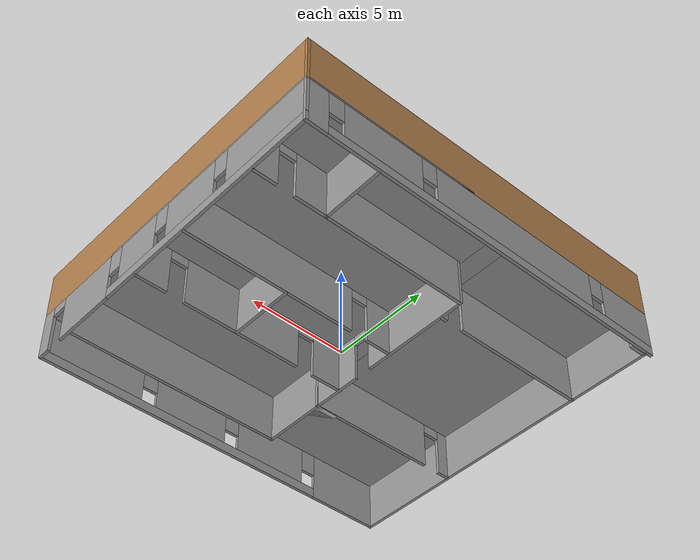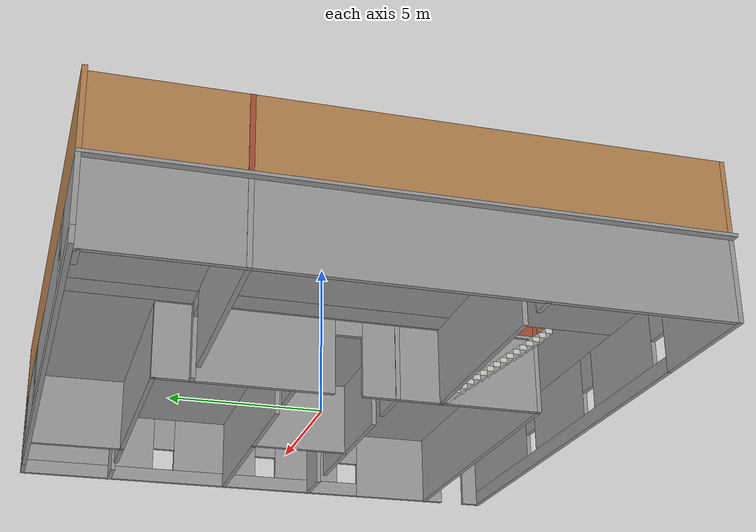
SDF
<?xml version='1.0'?>
<sdf version='1.7'>
  <model name='Robot_house'>
    <pose>-0.318995 -0.086869 0 0 -0 0</pose>
    <link name='Door_7'>
      <collision name='Door_7_Collision'>
        <geometry>
          <box>
            <size>0.9 0.17 2</size>
          </box>
        </geometry>
        <pose>0 0 1 0 -0 0</pose>
      </collision>
      <visual name='Door_7_Visual'>
        <pose>0 0 1 0 -0 0</pose>
        <geometry>
          <box>
            <size>0.9 0.17 2</size>
          </box>
        </geometry>
        <material>
          <script>
            <uri>file://media/materials/scripts/gazebo.material</uri>
            <name>Gazebo/Grey</name>
          </script>
        </material>
      </visual>
      <pose>-9.38068 8.88648 0 0 -0 0</pose>
    </link>
    <link name='Floor_0'>
      <pose>-5e-06 -0.000131 2.5 0 -0 0</pose>
      <visual name='Floor_0_Visual_0'>
        <pose>-6.33098 0 0.05 0 -0 0</pose>
        <geometry>
          <box>
            <size>7.58805 18.25 0.1</size>
          </box>
        </geometry>
        <material>
          <script>
            <uri>file://media/materials/scripts/gazebo.material</uri>
            <name>Gazebo/Grey</name>
          </script>
          <ambient>1 1 1 1</ambient>
        </material>
        <meta>
          <layer>1</layer>
        </meta>
      </visual>
      <collision name='Floor_0_Collision_0'>
        <geometry>
          <box>
            <size>7.58805 18.25 0.1</size>
          </box>
        </geometry>
        <pose>-6.33098 0 0.05 0 -0 0</pose>
      </collision>
      <visual name='Floor_0_Visual_1'>
        <pose>3.79402 -8.0081 0.05 0 -0 0</pose>
        <geometry>
          <box>
            <size>12.662 2.23379 0.1</size>
          </box>
        </geometry>
        <material>
          <script>
            <uri>file://media/materials/scripts/gazebo.material</uri>
            <name>Gazebo/Grey</name>
          </script>
          <ambient>1 1 1 1</ambient>
        </material>
        <meta>
          <layer>1</layer>
        </meta>
      </visual>
      <collision name='Floor_0_Collision_1'>
        <geometry>
          <box>
            <size>12.662 2.23379 0.1</size>
          </box>
        </geometry>
        <pose>3.79402 -8.0081 0.05 0 -0 0</pose>
      </collision>
      <visual name='Floor_0_Visual_2'>
        <pose>4.29402 1.1169 0.05 0 -0 0</pose>
        <geometry>
          <box>
            <size>11.662 16.0162 0.1</size>
          </box>
        </geometry>
        <material>
          <script>
            <uri>file://media/materials/scripts/gazebo.material</uri>
            <name>Gazebo/Grey</name>
          </script>
          <ambient>1 1 1 1</ambient>
        </material>
        <meta>
          <layer>1</layer>
        </meta>
      </visual>
      <collision name='Floor_0_Collision_2'>
        <geometry>
          <box>
            <size>11.662 16.0162 0.1</size>
          </box>
        </geometry>
        <pose>4.29402 1.1169 0.05 0 -0 0</pose>
      </collision>
      <visual name='Floor_0_Visual_3'>
        <pose>-2.03695 2.8669 0.05 0 -0 0</pose>
        <geometry>
          <box>
            <size>1 12.5162 0.1</size>
          </box>
        </geometry>
        <material>
          <script>
            <uri>file://media/materials/scripts/gazebo.material</uri>
            <name>Gazebo/Grey</name>
          </script>
          <ambient>1 1 1 1</ambient>
        </material>
        <meta>
          <layer>1</layer>
        </meta>
      </visual>
      <collision name='Floor_0_Collision_3'>
        <geometry>
          <box>
            <size>1 12.5162 0.1</size>
          </box>
        </geometry>
        <pose>-2.03695 2.8669 0.05 0 -0 0</pose>
      </collision>
    </link>
    <link name='Stairs_0'>
      <visual name='Stairs_0_Visual_0'>
        <pose>-2.03696 -3.508 0.083333 0 -0 0</pose>
        <geometry>
          <box>
            <size>1 0.233333 0.166667</size>
          </box>
        </geometry>
        <material>
          <script>
            <uri>file://media/materials/scripts/gazebo.material</uri>
            <name>Gazebo/CeilingTiled</name>
          </script>
          <ambient>1 1 1 1</ambient>
        </material>
        <meta>
          <layer>0</layer>
        </meta>
      </visual>
      <collision name='Stairs_0_Collision_0'>
        <geometry>
          <box>
            <size>1 0.233333 0.166667</size>
          </box>
        </geometry>
        <pose>-2.03696 -3.508 0.083333 0 -0 0</pose>
      </collision>
      <visual name='Stairs_0_Visual_1'>
        <pose>-2.03696 -3.74134 0.25 0 -0 0</pose>
        <geometry>
          <box>
            <size>1 0.233333 0.166667</size>
          </box>
        </geometry>
        <material>
          <script>
            <uri>file://media/materials/scripts/gazebo.material</uri>
            <name>Gazebo/CeilingTiled</name>
          </script>
          <ambient>1 1 1 1</ambient>
        </material>
        <meta>
          <layer>0</layer>
        </meta>
      </visual>
      <collision name='Stairs_0_Collision_1'>
        <geometry>
          <box>
            <size>1 0.233333 0.166667</size>
          </box>
        </geometry>
        <pose>-2.03696 -3.74134 0.25 0 -0 0</pose>
      </collision>
      <visual name='Stairs_0_Visual_2'>
        <pose>-2.03696 -3.97467 0.416667 0 -0 0</pose>
        <geometry>
          <box>
            <size>1 0.233333 0.166667</size>
          </box>
        </geometry>
        <material>
          <script>
            <uri>file://media/materials/scripts/gazebo.material</uri>
            <name>Gazebo/CeilingTiled</name>
          </script>
          <ambient>1 1 1 1</ambient>
        </material>
        <meta>
          <layer>0</layer>
        </meta>
      </visual>
      <collision name='Stairs_0_Collision_2'>
        <geometry>
          <box>
            <size>1 0.233333 0.166667</size>
          </box>
        </geometry>
        <pose>-2.03696 -3.97467 0.416667 0 -0 0</pose>
      </collision>
      <visual name='Stairs_0_Visual_3'>
        <pose>-2.03696 -4.208 0.583333 0 -0 0</pose>
        <geometry>
          <box>
            <size>1 0.233333 0.166667</size>
          </box>
        </geometry>
        <material>
          <script>
            <uri>file://media/materials/scripts/gazebo.material</uri>
            <name>Gazebo/CeilingTiled</name>
          </script>
          <ambient>1 1 1 1</ambient>
        </material>
        <meta>
          <layer>0</layer>
        </meta>
      </visual>
      <collision name='Stairs_0_Collision_3'>
        <geometry>
          <box>
            <size>1 0.233333 0.166667</size>
          </box>
        </geometry>
        <pose>-2.03696 -4.208 0.583333 0 -0 0</pose>
      </collision>
      <visual name='Stairs_0_Visual_4'>
        <pose>-2.03696 -4.44134 0.75 0 -0 0</pose>
        <geometry>
          <box>
            <size>1 0.233333 0.166667</size>
          </box>
        </geometry>
        <material>
          <script>
            <uri>file://media/materials/scripts/gazebo.material</uri>
            <name>Gazebo/CeilingTiled</name>
          </script>
          <ambient>1 1 1 1</ambient>
        </material>
        <meta>
          <layer>0</layer>
        </meta>
      </visual>
      <collision name='Stairs_0_Collision_4'>
        <geometry>
          <box>
            <size>1 0.233333 0.166667</size>
          </box>
        </geometry>
        <pose>-2.03696 -4.44134 0.75 0 -0 0</pose>
      </collision>
      <visual name='Stairs_0_Visual_5'>
        <pose>-2.03696 -4.67467 0.916667 0 -0 0</pose>
        <geometry>
          <box>
            <size>1 0.233333 0.166667</size>
          </box>
        </geometry>
        <material>
          <script>
            <uri>file://media/materials/scripts/gazebo.material</uri>
            <name>Gazebo/CeilingTiled</name>
          </script>
          <ambient>1 1 1 1</ambient>
        </material>
        <meta>
          <layer>0</layer>
        </meta>
      </visual>
      <collision name='Stairs_0_Collision_5'>
        <geometry>
          <box>
            <size>1 0.233333 0.166667</size>
          </box>
        </geometry>
        <pose>-2.03696 -4.67467 0.916667 0 -0 0</pose>
      </collision>
      <visual name='Stairs_0_Visual_6'>
        <pose>-2.03696 -4.908 1.08333 0 -0 0</pose>
        <geometry>
          <box>
            <size>1 0.233333 0.166667</size>
          </box>
        </geometry>
        <material>
          <script>
            <uri>file://media/materials/scripts/gazebo.material</uri>
            <name>Gazebo/CeilingTiled</name>
          </script>
          <ambient>1 1 1 1</ambient>
        </material>
        <meta>
          <layer>0</layer>
        </meta>
      </visual>
      <collision name='Stairs_0_Collision_6'>
        <geometry>
          <box>
            <size>1 0.233333 0.166667</size>
          </box>
        </geometry>
        <pose>-2.03696 -4.908 1.08333 0 -0 0</pose>
      </collision>
      <visual name='Stairs_0_Visual_7'>
        <pose>-2.03696 -5.14134 1.25 0 -0 0</pose>
        <geometry>
          <box>
            <size>1 0.233333 0.166667</size>
          </box>
        </geometry>
        <material>
          <script>
            <uri>file://media/materials/scripts/gazebo.material</uri>
            <name>Gazebo/CeilingTiled</name>
          </script>
          <ambient>1 1 1 1</ambient>
        </material>
        <meta>
          <layer>0</layer>
        </meta>
      </visual>
      <collision name='Stairs_0_Collision_7'>
        <geometry>
          <box>
            <size>1 0.233333 0.166667</size>
          </box>
        </geometry>
        <pose>-2.03696 -5.14134 1.25 0 -0 0</pose>
      </collision>
      <visual name='Stairs_0_Visual_8'>
        <pose>-2.03696 -5.37467 1.41667 0 -0 0</pose>
        <geometry>
          <box>
            <size>1 0.233333 0.166667</size>
          </box>
        </geometry>
        <material>
          <script>
            <uri>file://media/materials/scripts/gazebo.material</uri>
            <name>Gazebo/CeilingTiled</name>
          </script>
          <ambient>1 1 1 1</ambient>
        </material>
        <meta>
          <layer>0</layer>
        </meta>
      </visual>
      <collision name='Stairs_0_Collision_8'>
        <geometry>
          <box>
            <size>1 0.233333 0.166667</size>
          </box>
        </geometry>
        <pose>-2.03696 -5.37467 1.41667 0 -0 0</pose>
      </collision>
      <visual name='Stairs_0_Visual_9'>
        <pose>-2.03696 -5.608 1.58333 0 -0 0</pose>
        <geometry>
          <box>
            <size>1 0.233333 0.166667</size>
          </box>
        </geometry>
        <material>
          <script>
            <uri>file://media/materials/scripts/gazebo.material</uri>
            <name>Gazebo/CeilingTiled</name>
          </script>
          <ambient>1 1 1 1</ambient>
        </material>
        <meta>
          <layer>0</layer>
        </meta>
      </visual>
      <collision name='Stairs_0_Collision_9'>
        <geometry>
          <box>
            <size>1 0.233333 0.166667</size>
          </box>
        </geometry>
        <pose>-2.03696 -5.608 1.58333 0 -0 0</pose>
      </collision>
      <visual name='Stairs_0_Visual_10'>
        <pose>-2.03696 -5.84134 1.75 0 -0 0</pose>
        <geometry>
          <box>
            <size>1 0.233333 0.166667</size>
          </box>
        </geometry>
        <material>
          <script>
            <uri>file://media/materials/scripts/gazebo.material</uri>
            <name>Gazebo/CeilingTiled</name>
          </script>
          <ambient>1 1 1 1</ambient>
        </material>
        <meta>
          <layer>0</layer>
        </meta>
      </visual>
      <collision name='Stairs_0_Collision_10'>
        <geometry>
          <box>
            <size>1 0.233333 0.166667</size>
          </box>
        </geometry>
        <pose>-2.03696 -5.84134 1.75 0 -0 0</pose>
      </collision>
      <visual name='Stairs_0_Visual_11'>
        <pose>-2.03696 -6.07467 1.91667 0 -0 0</pose>
        <geometry>
          <box>
            <size>1 0.233333 0.166667</size>
          </box>
        </geometry>
        <material>
          <script>
            <uri>file://media/materials/scripts/gazebo.material</uri>
            <name>Gazebo/CeilingTiled</name>
          </script>
          <ambient>1 1 1 1</ambient>
        </material>
        <meta>
          <layer>0</layer>
        </meta>
      </visual>
      <collision name='Stairs_0_Collision_11'>
        <geometry>
          <box>
            <size>1 0.233333 0.166667</size>
          </box>
        </geometry>
        <pose>-2.03696 -6.07467 1.91667 0 -0 0</pose>
      </collision>
      <visual name='Stairs_0_Visual_12'>
        <pose>-2.03696 -6.308 2.08333 0 -0 0</pose>
        <geometry>
          <box>
            <size>1 0.233333 0.166667</size>
          </box>
        </geometry>
        <material>
          <script>
            <uri>file://media/materials/scripts/gazebo.material</uri>
            <name>Gazebo/CeilingTiled</name>
          </script>
          <ambient>1 1 1 1</ambient>
        </material>
        <meta>
          <layer>0</layer>
        </meta>
      </visual>
      <collision name='Stairs_0_Collision_12'>
        <geometry>
          <box>
            <size>1 0.233333 0.166667</size>
          </box>
        </geometry>
        <pose>-2.03696 -6.308 2.08333 0 -0 0</pose>
      </collision>
      <visual name='Stairs_0_Visual_13'>
        <pose>-2.03696 -6.54134 2.25 0 -0 0</pose>
        <geometry>
          <box>
            <size>1 0.233333 0.166667</size>
          </box>
        </geometry>
        <material>
          <script>
            <uri>file://media/materials/scripts/gazebo.material</uri>
            <name>Gazebo/CeilingTiled</name>
          </script>
          <ambient>1 1 1 1</ambient>
        </material>
        <meta>
          <layer>0</layer>
        </meta>
      </visual>
      <collision name='Stairs_0_Collision_13'>
        <geometry>
          <box>
            <size>1 0.233333 0.166667</size>
          </box>
        </geometry>
        <pose>-2.03696 -6.54134 2.25 0 -0 0</pose>
      </collision>
      <visual name='Stairs_0_Visual_14'>
        <pose>-2.03696 -6.77467 2.41667 0 -0 0</pose>
        <geometry>
          <box>
            <size>1 0.233333 0.166667</size>
          </box>
        </geometry>
        <material>
          <script>
            <uri>file://media/materials/scripts/gazebo.material</uri>
            <name>Gazebo/CeilingTiled</name>
          </script>
          <ambient>1 1 1 1</ambient>
        </material>
        <meta>
          <layer>0</layer>
        </meta>
      </visual>
      <collision name='Stairs_0_Collision_14'>
        <geometry>
          <box>
            <size>1 0.233333 0.166667</size>
          </box>
        </geometry>
        <pose>-2.03696 -6.77467 2.41667 0 -0 0</pose>
      </collision>
    </link>
    <link name='Wall_26'>
      <pose>0.125005 -9.04987 0 0 -0 0</pose>
      <visual name='Wall_26_Visual_0'>
        <pose>-8.00034 0 1.25 0 -0 0</pose>
        <geometry>
          <box>
            <size>3.99931 0.15 2.5</size>
          </box>
        </geometry>
        <material>
          <script>
            <uri>file://media/materials/scripts/gazebo.material</uri>
            <name>Gazebo/Grey</name>
          </script>
          <ambient>1 1 1 1</ambient>
        </material>
        <meta>
          <layer>0</layer>
        </meta>
      </visual>
      <collision name='Wall_26_Collision_0'>
        <geometry>
          <box>
            <size>3.99931 0.15 2.5</size>
          </box>
        </geometry>
        <pose>-8.00034 0 1.25 0 -0 0</pose>
      </collision>
      <visual name='Wall_26_Visual_1'>
        <pose>1.99966 0 0.25 0 -0 0</pose>
        <geometry>
          <box>
            <size>16.0007 0.15 0.5</size>
          </box>
        </geometry>
        <material>
          <script>
            <uri>file://media/materials/scripts/gazebo.material</uri>
            <name>Gazebo/Grey</name>
          </script>
          <ambient>1 1 1 1</ambient>
        </material>
        <meta>
          <layer>0</layer>
        </meta>
      </visual>
      <collision name='Wall_26_Collision_1'>
        <geometry>
          <box>
            <size>16.0007 0.15 0.5</size>
          </box>
        </geometry>
        <pose>1.99966 0 0.25 0 -0 0</pose>
      </collision>
      <visual name='Wall_26_Visual_2'>
        <pose>-3.16463 0 1.5 0 -0 0</pose>
        <geometry>
          <box>
            <size>4.07211 0.15 2</size>
          </box>
        </geometry>
        <material>
          <script>
            <uri>file://media/materials/scripts/gazebo.material</uri>
            <name>Gazebo/Grey</name>
          </script>
          <ambient>1 1 1 1</ambient>
        </material>
        <meta>
          <layer>0</layer>
        </meta>
      </visual>
      <collision name='Wall_26_Collision_2'>
        <geometry>
          <box>
            <size>4.07211 0.15 2</size>
          </box>
        </geometry>
        <pose>-3.16463 0 1.5 0 -0 0</pose>
      </collision>
      <visual name='Wall_26_Visual_3'>
        <pose>1.70579 0 1.5 0 -0 0</pose>
        <geometry>
          <box>
            <size>4.06873 0.15 2</size>
          </box>
        </geometry>
        <material>
          <script>
            <uri>file://media/materials/scripts/gazebo.material</uri>
            <name>Gazebo/Grey</name>
          </script>
          <ambient>1 1 1 1</ambient>
        </material>
        <meta>
          <layer>0</layer>
        </meta>
      </visual>
      <collision name='Wall_26_Collision_3'>
        <geometry>
          <box>
            <size>4.06873 0.15 2</size>
          </box>
        </geometry>
        <pose>1.70579 0 1.5 0 -0 0</pose>
      </collision>
      <visual name='Wall_26_Visual_4'>
        <pose>7.27008 0 1.5 0 -0 0</pose>
        <geometry>
          <box>
            <size>5.45985 0.15 2</size>
          </box>
        </geometry>
        <material>
          <script>
            <uri>file://media/materials/scripts/gazebo.material</uri>
            <name>Gazebo/Grey</name>
          </script>
          <ambient>1 1 1 1</ambient>
        </material>
        <meta>
          <layer>0</layer>
        </meta>
      </visual>
      <collision name='Wall_26_Collision_4'>
        <geometry>
          <box>
            <size>5.45985 0.15 2</size>
          </box>
        </geometry>
        <pose>7.27008 0 1.5 0 -0 0</pose>
      </collision>
      <visual name='Wall_26_Visual_5'>
        <pose>-5.60069 0 1.9 0 -0 0</pose>
        <geometry>
          <box>
            <size>0.8 0.15 1.2</size>
          </box>
        </geometry>
        <material>
          <script>
            <uri>file://media/materials/scripts/gazebo.material</uri>
            <name>Gazebo/Grey</name>
          </script>
          <ambient>1 1 1 1</ambient>
        </material>
        <meta>
          <layer>0</layer>
        </meta>
      </visual>
      <collision name='Wall_26_Collision_5'>
        <geometry>
          <box>
            <size>0.8 0.15 1.2</size>
          </box>
        </geometry>
        <pose>-5.60069 0 1.9 0 -0 0</pose>
      </collision>
      <visual name='Wall_26_Visual_6'>
        <pose>-0.728575 0 1.9 0 -0 0</pose>
        <geometry>
          <box>
            <size>0.8 0.15 1.2</size>
          </box>
        </geometry>
        <material>
          <script>
            <uri>file://media/materials/scripts/gazebo.material</uri>
            <name>Gazebo/Grey</name>
          </script>
          <ambient>1 1 1 1</ambient>
        </material>
        <meta>
          <layer>0</layer>
        </meta>
      </visual>
      <collision name='Wall_26_Collision_6'>
        <geometry>
          <box>
            <size>0.8 0.15 1.2</size>
          </box>
        </geometry>
        <pose>-0.728575 0 1.9 0 -0 0</pose>
      </collision>
      <visual name='Wall_26_Visual_7'>
        <pose>4.14015 0 1.9 0 -0 0</pose>
        <geometry>
          <box>
            <size>0.8 0.15 1.2</size>
          </box>
        </geometry>
        <material>
          <script>
            <uri>file://media/materials/scripts/gazebo.material</uri>
            <name>Gazebo/Grey</name>
          </script>
          <ambient>1 1 1 1</ambient>
        </material>
        <meta>
          <layer>0</layer>
        </meta>
      </visual>
      <collision name='Wall_26_Collision_7'>
        <geometry>
          <box>
            <size>0.8 0.15 1.2</size>
          </box>
        </geometry>
        <pose>4.14015 0 1.9 0 -0 0</pose>
      </collision>
    </link>
    <link name='Wall_27'>
      <pose>10.05 0.00013 0 0 -0 1.5708</pose>
      <visual name='Wall_27_Visual_0'>
        <pose>-8.75395 0 1.25 0 -0 0</pose>
        <geometry>
          <box>
            <size>0.742097 0.15 2.5</size>
          </box>
        </geometry>
        <material>
          <script>
            <uri>file://media/materials/scripts/gazebo.material</uri>
            <name>Gazebo/Grey</name>
          </script>
          <ambient>1 1 1 1</ambient>
        </material>
        <meta>
          <layer>0</layer>
        </meta>
      </visual>
      <collision name='Wall_27_Collision_0'>
        <geometry>
          <box>
            <size>0.742097 0.15 2.5</size>
          </box>
        </geometry>
        <pose>-8.75395 0 1.25 0 -0 0</pose>
      </collision>
      <visual name='Wall_27_Visual_1'>
        <pose>-5.70162 0 1.25 0 -0 0</pose>
        <geometry>
          <box>
            <size>3.56258 0.15 2.5</size>
          </box>
        </geometry>
        <material>
          <script>
            <uri>file://media/materials/scripts/gazebo.material</uri>
            <name>Gazebo/Grey</name>
          </script>
          <ambient>1 1 1 1</ambient>
        </material>
        <meta>
          <layer>0</layer>
        </meta>
      </visual>
      <collision name='Wall_27_Collision_1'>
        <geometry>
          <box>
            <size>3.56258 0.15 2.5</size>
          </box>
        </geometry>
        <pose>-5.70162 0 1.25 0 -0 0</pose>
      </collision>
      <visual name='Wall_27_Visual_2'>
        <pose>2.60234 0 0.25 0 -0 0</pose>
        <geometry>
          <box>
            <size>13.0453 0.15 0.5</size>
          </box>
        </geometry>
        <material>
          <script>
            <uri>file://media/materials/scripts/gazebo.material</uri>
            <name>Gazebo/Grey</name>
          </script>
          <ambient>1 1 1 1</ambient>
        </material>
        <meta>
          <layer>0</layer>
        </meta>
      </visual>
      <collision name='Wall_27_Collision_2'>
        <geometry>
          <box>
            <size>13.0453 0.15 0.5</size>
          </box>
        </geometry>
        <pose>2.60234 0 0.25 0 -0 0</pose>
      </collision>
      <visual name='Wall_27_Visual_3'>
        <pose>-1.85316 0 1.5 0 -0 0</pose>
        <geometry>
          <box>
            <size>2.53434 0.15 2</size>
          </box>
        </geometry>
        <material>
          <script>
            <uri>file://media/materials/scripts/gazebo.material</uri>
            <name>Gazebo/Grey</name>
          </script>
          <ambient>1 1 1 1</ambient>
        </material>
        <meta>
          <layer>0</layer>
        </meta>
      </visual>
      <collision name='Wall_27_Collision_3'>
        <geometry>
          <box>
            <size>2.53434 0.15 2</size>
          </box>
        </geometry>
        <pose>-1.85316 0 1.5 0 -0 0</pose>
      </collision>
      <visual name='Wall_27_Visual_4'>
        <pose>1.81767 0 1.5 0 -0 0</pose>
        <geometry>
          <box>
            <size>3.20732 0.15 2</size>
          </box>
        </geometry>
        <material>
          <script>
            <uri>file://media/materials/scripts/gazebo.material</uri>
            <name>Gazebo/Grey</name>
          </script>
          <ambient>1 1 1 1</ambient>
        </material>
        <meta>
          <layer>0</layer>
        </meta>
      </visual>
      <collision name='Wall_27_Collision_4'>
        <geometry>
          <box>
            <size>3.20732 0.15 2</size>
          </box>
        </geometry>
        <pose>1.81767 0 1.5 0 -0 0</pose>
      </collision>
      <visual name='Wall_27_Visual_5'>
        <pose>6.67316 0 1.5 0 -0 0</pose>
        <geometry>
          <box>
            <size>4.90367 0.15 2</size>
          </box>
        </geometry>
        <material>
          <script>
            <uri>file://media/materials/scripts/gazebo.material</uri>
            <name>Gazebo/Grey</name>
          </script>
          <ambient>1 1 1 1</ambient>
        </material>
        <meta>
          <layer>0</layer>
        </meta>
      </visual>
      <collision name='Wall_27_Collision_5'>
        <geometry>
          <box>
            <size>4.90367 0.15 2</size>
          </box>
        </geometry>
        <pose>6.67316 0 1.5 0 -0 0</pose>
      </collision>
      <visual name='Wall_27_Visual_6'>
        <pose>-3.52033 0 1.9 0 -0 0</pose>
        <geometry>
          <box>
            <size>0.8 0.15 1.2</size>
          </box>
        </geometry>
        <material>
          <script>
            <uri>file://media/materials/scripts/gazebo.material</uri>
            <name>Gazebo/Grey</name>
          </script>
          <ambient>1 1 1 1</ambient>
        </material>
        <meta>
          <layer>0</layer>
        </meta>
      </visual>
      <collision name='Wall_27_Collision_6'>
        <geometry>
          <box>
            <size>0.8 0.15 1.2</size>
          </box>
        </geometry>
        <pose>-3.52033 0 1.9 0 -0 0</pose>
      </collision>
      <visual name='Wall_27_Visual_7'>
        <pose>-0.185992 0 1.9 0 -0 0</pose>
        <geometry>
          <box>
            <size>0.8 0.15 1.2</size>
          </box>
        </geometry>
        <material>
          <script>
            <uri>file://media/materials/scripts/gazebo.material</uri>
            <name>Gazebo/Grey</name>
          </script>
          <ambient>1 1 1 1</ambient>
        </material>
        <meta>
          <layer>0</layer>
        </meta>
      </visual>
      <collision name='Wall_27_Collision_7'>
        <geometry>
          <box>
            <size>0.8 0.15 1.2</size>
          </box>
        </geometry>
        <pose>-0.185992 0 1.9 0 -0 0</pose>
      </collision>
      <visual name='Wall_27_Visual_8'>
        <pose>3.82133 0 1.9 0 -0 0</pose>
        <geometry>
          <box>
            <size>0.8 0.15 1.2</size>
          </box>
        </geometry>
        <material>
          <script>
            <uri>file://media/materials/scripts/gazebo.material</uri>
            <name>Gazebo/Grey</name>
          </script>
          <ambient>1 1 1 1</ambient>
        </material>
        <meta>
          <layer>0</layer>
        </meta>
      </visual>
      <collision name='Wall_27_Collision_8'>
        <geometry>
          <box>
            <size>0.8 0.15 1.2</size>
          </box>
        </geometry>
        <pose>3.82133 0 1.9 0 -0 0</pose>
      </collision>
      <visual name='Wall_27_Visual_9'>
        <pose>-7.9329 0 2.25 0 -0 0</pose>
        <geometry>
          <box>
            <size>0.9 0.15 0.5</size>
          </box>
        </geometry>
        <material>
          <script>
            <uri>file://media/materials/scripts/gazebo.material</uri>
            <name>Gazebo/Grey</name>
          </script>
          <ambient>1 1 1 1</ambient>
        </material>
        <meta>
          <layer>0</layer>
        </meta>
      </visual>
      <collision name='Wall_27_Collision_9'>
        <geometry>
          <box>
            <size>0.9 0.15 0.5</size>
          </box>
        </geometry>
        <pose>-7.9329 0 2.25 0 -0 0</pose>
      </collision>
    </link>
    <link name='Wall_28'>
      <pose>5e-06 9.05013 0 0 -0 3.14159</pose>
      <visual name='Wall_28_Visual_0'>
        <pose>-9.55122 0 1.25 0 -0 0</pose>
        <geometry>
          <box>
            <size>1.14757 0.15 2.5</size>
          </box>
        </geometry>
        <material>
          <script>
            <uri>file://media/materials/scripts/gazebo.material</uri>
            <name>Gazebo/Grey</name>
          </script>
          <ambient>1 1 1 1</ambient>
        </material>
        <meta>
          <layer>0</layer>
        </meta>
      </visual>
      <collision name='Wall_28_Collision_0'>
        <geometry>
          <box>
            <size>1.14757 0.15 2.5</size>
          </box>
        </geometry>
        <pose>-9.55122 0 1.25 0 -0 0</pose>
      </collision>
      <visual name='Wall_28_Visual_1'>
        <pose>0.573784 0 0.25 0 -0 0</pose>
        <geometry>
          <box>
            <size>19.1024 0.15 0.5</size>
          </box>
        </geometry>
        <material>
          <script>
            <uri>file://media/materials/scripts/gazebo.material</uri>
            <name>Gazebo/Grey</name>
          </script>
          <ambient>1 1 1 1</ambient>
        </material>
        <meta>
          <layer>0</layer>
        </meta>
      </visual>
      <collision name='Wall_28_Collision_1'>
        <geometry>
          <box>
            <size>19.1024 0.15 0.5</size>
          </box>
        </geometry>
        <pose>0.573784 0 0.25 0 -0 0</pose>
      </collision>
      <visual name='Wall_28_Visual_2'>
        <pose>-6.06919 0 1.5 0 -0 0</pose>
        <geometry>
          <box>
            <size>4.21649 0.15 2</size>
          </box>
        </geometry>
        <material>
          <script>
            <uri>file://media/materials/scripts/gazebo.material</uri>
            <name>Gazebo/Grey</name>
          </script>
          <ambient>1 1 1 1</ambient>
        </material>
        <meta>
          <layer>0</layer>
        </meta>
      </visual>
      <collision name='Wall_28_Collision_2'>
        <geometry>
          <box>
            <size>4.21649 0.15 2</size>
          </box>
        </geometry>
        <pose>-6.06919 0 1.5 0 -0 0</pose>
      </collision>
      <visual name='Wall_28_Visual_3'>
        <pose>1.53438 0 1.5 0 -0 0</pose>
        <geometry>
          <box>
            <size>9.39064 0.15 2</size>
          </box>
        </geometry>
        <material>
          <script>
            <uri>file://media/materials/scripts/gazebo.material</uri>
            <name>Gazebo/Grey</name>
          </script>
          <ambient>1 1 1 1</ambient>
        </material>
        <meta>
          <layer>0</layer>
        </meta>
      </visual>
      <collision name='Wall_28_Collision_3'>
        <geometry>
          <box>
            <size>9.39064 0.15 2</size>
          </box>
        </geometry>
        <pose>1.53438 0 1.5 0 -0 0</pose>
      </collision>
      <visual name='Wall_28_Visual_4'>
        <pose>8.57735 0 1.5 0 -0 0</pose>
        <geometry>
          <box>
            <size>3.0953 0.15 2</size>
          </box>
        </geometry>
        <material>
          <script>
            <uri>file://media/materials/scripts/gazebo.material</uri>
            <name>Gazebo/Grey</name>
          </script>
          <ambient>1 1 1 1</ambient>
        </material>
        <meta>
          <layer>0</layer>
        </meta>
      </visual>
      <collision name='Wall_28_Collision_4'>
        <geometry>
          <box>
            <size>3.0953 0.15 2</size>
          </box>
        </geometry>
        <pose>8.57735 0 1.5 0 -0 0</pose>
      </collision>
      <visual name='Wall_28_Visual_5'>
        <pose>-8.57743 0 1.9 0 -0 0</pose>
        <geometry>
          <box>
            <size>0.8 0.15 1.2</size>
          </box>
        </geometry>
        <material>
          <script>
            <uri>file://media/materials/scripts/gazebo.material</uri>
            <name>Gazebo/Grey</name>
          </script>
          <ambient>1 1 1 1</ambient>
        </material>
        <meta>
          <layer>0</layer>
        </meta>
      </visual>
      <collision name='Wall_28_Collision_5'>
        <geometry>
          <box>
            <size>0.8 0.15 1.2</size>
          </box>
        </geometry>
        <pose>-8.57743 0 1.9 0 -0 0</pose>
      </collision>
      <visual name='Wall_28_Visual_6'>
        <pose>-3.56094 0 1.9 0 -0 0</pose>
        <geometry>
          <box>
            <size>0.8 0.15 1.2</size>
          </box>
        </geometry>
        <material>
          <script>
            <uri>file://media/materials/scripts/gazebo.material</uri>
            <name>Gazebo/Grey</name>
          </script>
          <ambient>1 1 1 1</ambient>
        </material>
        <meta>
          <layer>0</layer>
        </meta>
      </visual>
      <collision name='Wall_28_Collision_6'>
        <geometry>
          <box>
            <size>0.8 0.15 1.2</size>
          </box>
        </geometry>
        <pose>-3.56094 0 1.9 0 -0 0</pose>
      </collision>
      <visual name='Wall_28_Visual_7'>
        <pose>6.62971 0 1.9 0 -0 0</pose>
        <geometry>
          <box>
            <size>0.8 0.15 1.2</size>
          </box>
        </geometry>
        <material>
          <script>
            <uri>file://media/materials/scripts/gazebo.material</uri>
            <name>Gazebo/Grey</name>
          </script>
          <ambient>1 1 1 1</ambient>
        </material>
        <meta>
          <layer>0</layer>
        </meta>
      </visual>
      <collision name='Wall_28_Collision_7'>
        <geometry>
          <box>
            <size>0.8 0.15 1.2</size>
          </box>
        </geometry>
        <pose>6.62971 0 1.9 0 -0 0</pose>
      </collision>
    </link>
    <link name='Wall_31'>
      <collision name='Wall_31_Collision'>
        <geometry>
          <box>
            <size>18.25 0.15 2.5</size>
          </box>
        </geometry>
        <pose>0 0 1.25 0 -0 0</pose>
      </collision>
      <visual name='Wall_31_Visual'>
        <pose>0 0 1.25 0 -0 0</pose>
        <geometry>
          <box>
            <size>18.25 0.15 2.5</size>
          </box>
        </geometry>
        <material>
          <script>
            <uri>file://media/materials/scripts/gazebo.material</uri>
            <name>Gazebo/Grey</name>
          </script>
          <ambient>1 1 1 1</ambient>
        </material>
        <meta>
          <layer>0</layer>
        </meta>
      </visual>
      <pose>-9.79999 0.00013 0 0 -0 1.5708</pose>
    </link>
    <link name='Wall_41'>
      <collision name='Wall_41_Collision'>
        <geometry>
          <box>
            <size>11.5 0.15 2.5</size>
          </box>
        </geometry>
        <pose>0 0 1.25 0 -0 0</pose>
      </collision>
      <visual name='Wall_41_Visual'>
        <pose>0 0 1.25 0 -0 0</pose>
        <geometry>
          <box>
            <size>11.5 0.15 2.5</size>
          </box>
        </geometry>
        <material>
          <script>
            <uri>file://media/materials/scripts/gazebo.material</uri>
            <name>Gazebo/Grey</name>
          </script>
          <ambient>1 1 1 1</ambient>
        </material>
        <meta>
          <layer>0</layer>
        </meta>
      </visual>
      <pose>4.30819 -6.77344 0 0 -0 3.14159</pose>
    </link>
    <link name='Wall_42'>
      <pose>-1.36681 -0.47344 0 0 -0 1.5708</pose>
      <visual name='Wall_42_Visual_0'>
        <pose>-3.34447 0 1.25 0 -0 0</pose>
        <geometry>
          <box>
            <size>6.06105 0.15 2.5</size>
          </box>
        </geometry>
        <material>
          <script>
            <uri>file://media/materials/scripts/gazebo.material</uri>
            <name>Gazebo/Grey</name>
          </script>
          <ambient>1 1 1 1</ambient>
        </material>
        <meta>
          <layer>0</layer>
        </meta>
      </visual>
      <collision name='Wall_42_Collision_0'>
        <geometry>
          <box>
            <size>6.06105 0.15 2.5</size>
          </box>
        </geometry>
        <pose>-3.34447 0 1.25 0 -0 0</pose>
      </collision>
      <visual name='Wall_42_Visual_1'>
        <pose>3.48053 0 1.25 0 -0 0</pose>
        <geometry>
          <box>
            <size>5.78895 0.15 2.5</size>
          </box>
        </geometry>
        <material>
          <script>
            <uri>file://media/materials/scripts/gazebo.material</uri>
            <name>Gazebo/Grey</name>
          </script>
          <ambient>1 1 1 1</ambient>
        </material>
        <meta>
          <layer>0</layer>
        </meta>
      </visual>
      <collision name='Wall_42_Collision_1'>
        <geometry>
          <box>
            <size>5.78895 0.15 2.5</size>
          </box>
        </geometry>
        <pose>3.48053 0 1.25 0 -0 0</pose>
      </collision>
      <visual name='Wall_42_Visual_2'>
        <pose>0.136051 0 2.25 0 -0 0</pose>
        <geometry>
          <box>
            <size>0.9 0.15 0.5</size>
          </box>
        </geometry>
        <material>
          <script>
            <uri>file://media/materials/scripts/gazebo.material</uri>
            <name>Gazebo/Grey</name>
          </script>
          <ambient>1 1 1 1</ambient>
        </material>
        <meta>
          <layer>0</layer>
        </meta>
      </visual>
      <collision name='Wall_42_Collision_2'>
        <geometry>
          <box>
            <size>0.9 0.15 0.5</size>
          </box>
        </geometry>
        <pose>0.136051 0 2.25 0 -0 0</pose>
      </collision>
    </link>
    <link name='Wall_43'>
      <collision name='Wall_43_Collision'>
        <geometry>
          <box>
            <size>7.70977 0.15 2.5</size>
          </box>
        </geometry>
        <pose>0 0 1.25 0 -0 0</pose>
      </collision>
      <visual name='Wall_43_Visual'>
        <pose>0 0 1.25 0 -0 0</pose>
        <geometry>
          <box>
            <size>7.70977 0.15 2.5</size>
          </box>
        </geometry>
        <material>
          <script>
            <uri>file://media/materials/scripts/gazebo.material</uri>
            <name>Gazebo/Grey</name>
          </script>
          <ambient>1 1 1 1</ambient>
        </material>
        <meta>
          <layer>0</layer>
        </meta>
      </visual>
      <pose>2.41308 5.82656 0 0 -0 0</pose>
    </link>
    <link name='Wall_44'>
      <collision name='Wall_44_Collision'>
        <geometry>
          <box>
            <size>3.25 0.15 2.5</size>
          </box>
        </geometry>
        <pose>0 0 1.25 0 -0 0</pose>
      </collision>
      <visual name='Wall_44_Visual'>
        <pose>0 0 1.25 0 -0 0</pose>
        <geometry>
          <box>
            <size>3.25 0.15 2.5</size>
          </box>
        </geometry>
        <material>
          <script>
            <uri>file://media/materials/scripts/gazebo.material</uri>
            <name>Gazebo/Grey</name>
          </script>
          <ambient>1 1 1 1</ambient>
        </material>
        <meta>
          <layer>0</layer>
        </meta>
      </visual>
      <pose>6.21308 7.37656 0 0 -0 1.55782</pose>
    </link>
    <link name='Wall_46'>
      <pose>-5.52243 -3.42391 0 0 -0 0</pose>
      <visual name='Wall_46_Visual_0'>
        <pose>-3.91782 0 1.25 0 -0 0</pose>
        <geometry>
          <box>
            <size>0.664359 0.15 2.5</size>
          </box>
        </geometry>
        <material>
          <script>
            <uri>file://media/materials/scripts/gazebo.material</uri>
            <name>Gazebo/Grey</name>
          </script>
          <ambient>1 1 1 1</ambient>
        </material>
        <meta>
          <layer>0</layer>
        </meta>
      </visual>
      <collision name='Wall_46_Collision_0'>
        <geometry>
          <box>
            <size>0.664359 0.15 2.5</size>
          </box>
        </geometry>
        <pose>-3.91782 0 1.25 0 -0 0</pose>
      </collision>
      <visual name='Wall_46_Visual_1'>
        <pose>0.782179 0 1.25 0 -0 0</pose>
        <geometry>
          <box>
            <size>6.93564 0.15 2.5</size>
          </box>
        </geometry>
        <material>
          <script>
            <uri>file://media/materials/scripts/gazebo.material</uri>
            <name>Gazebo/Grey</name>
          </script>
          <ambient>1 1 1 1</ambient>
        </material>
        <meta>
          <layer>0</layer>
        </meta>
      </visual>
      <collision name='Wall_46_Collision_1'>
        <geometry>
          <box>
            <size>6.93564 0.15 2.5</size>
          </box>
        </geometry>
        <pose>0.782179 0 1.25 0 -0 0</pose>
      </collision>
      <visual name='Wall_46_Visual_2'>
        <pose>-3.13564 0 2.25 0 -0 0</pose>
        <geometry>
          <box>
            <size>0.9 0.15 0.5</size>
          </box>
        </geometry>
        <material>
          <script>
            <uri>file://media/materials/scripts/gazebo.material</uri>
            <name>Gazebo/Grey</name>
          </script>
          <ambient>1 1 1 1</ambient>
        </material>
        <meta>
          <layer>0</layer>
        </meta>
      </visual>
      <collision name='Wall_46_Collision_2'>
        <geometry>
          <box>
            <size>0.9 0.15 0.5</size>
          </box>
        </geometry>
        <pose>-3.13564 0 2.25 0 -0 0</pose>
      </collision>
    </link>
    <link name='Wall_48'>
      <pose>-5.63224 4.65171 0 0 -0 3.14159</pose>
      <visual name='Wall_48_Visual_0'>
        <pose>-4.07632 0 1.25 0 -0 0</pose>
        <geometry>
          <box>
            <size>0.34735 0.15 2.5</size>
          </box>
        </geometry>
        <material>
          <script>
            <uri>file://media/materials/scripts/gazebo.material</uri>
            <name>Gazebo/Grey</name>
          </script>
          <ambient>1 1 1 1</ambient>
        </material>
        <meta>
          <layer>0</layer>
        </meta>
      </visual>
      <collision name='Wall_48_Collision_0'>
        <geometry>
          <box>
            <size>0.34735 0.15 2.5</size>
          </box>
        </geometry>
        <pose>-4.07632 0 1.25 0 -0 0</pose>
      </collision>
      <visual name='Wall_48_Visual_1'>
        <pose>0.623675 0 1.25 0 -0 0</pose>
        <geometry>
          <box>
            <size>7.25265 0.15 2.5</size>
          </box>
        </geometry>
        <material>
          <script>
            <uri>file://media/materials/scripts/gazebo.material</uri>
            <name>Gazebo/Grey</name>
          </script>
          <ambient>1 1 1 1</ambient>
        </material>
        <meta>
          <layer>0</layer>
        </meta>
      </visual>
      <collision name='Wall_48_Collision_1'>
        <geometry>
          <box>
            <size>7.25265 0.15 2.5</size>
          </box>
        </geometry>
        <pose>0.623675 0 1.25 0 -0 0</pose>
      </collision>
      <visual name='Wall_48_Visual_2'>
        <pose>-3.45265 0 2.25 0 -0 0</pose>
        <geometry>
          <box>
            <size>0.9 0.15 0.5</size>
          </box>
        </geometry>
        <material>
          <script>
            <uri>file://media/materials/scripts/gazebo.material</uri>
            <name>Gazebo/Grey</name>
          </script>
          <ambient>1 1 1 1</ambient>
        </material>
        <meta>
          <layer>0</layer>
        </meta>
      </visual>
      <collision name='Wall_48_Collision_2'>
        <geometry>
          <box>
            <size>0.9 0.15 0.5</size>
          </box>
        </geometry>
        <pose>-3.45265 0 2.25 0 -0 0</pose>
      </collision>
    </link>
    <link name='Wall_65'>
      <pose>8.11796 5.82656 0 0 -0 0</pose>
      <visual name='Wall_65_Visual_0'>
        <pose>-1.11455 0 1.25 0 -0 0</pose>
        <geometry>
          <box>
            <size>1.7709 0.15 2.5</size>
          </box>
        </geometry>
        <material>
          <script>
            <uri>file://media/materials/scripts/gazebo.material</uri>
            <name>Gazebo/Grey</name>
          </script>
          <ambient>1 1 1 1</ambient>
        </material>
        <meta>
          <layer>0</layer>
        </meta>
      </visual>
      <collision name='Wall_65_Collision_0'>
        <geometry>
          <box>
            <size>1.7709 0.15 2.5</size>
          </box>
        </geometry>
        <pose>-1.11455 0 1.25 0 -0 0</pose>
      </collision>
      <visual name='Wall_65_Visual_1'>
        <pose>1.33545 0 1.25 0 -0 0</pose>
        <geometry>
          <box>
            <size>1.3291 0.15 2.5</size>
          </box>
        </geometry>
        <material>
          <script>
            <uri>file://media/materials/scripts/gazebo.material</uri>
            <name>Gazebo/Grey</name>
          </script>
          <ambient>1 1 1 1</ambient>
        </material>
        <meta>
          <layer>0</layer>
        </meta>
      </visual>
      <collision name='Wall_65_Collision_1'>
        <geometry>
          <box>
            <size>1.3291 0.15 2.5</size>
          </box>
        </geometry>
        <pose>1.33545 0 1.25 0 -0 0</pose>
      </collision>
      <visual name='Wall_65_Visual_2'>
        <pose>0.2209 0 2.25 0 -0 0</pose>
        <geometry>
          <box>
            <size>0.9 0.15 0.5</size>
          </box>
        </geometry>
        <material>
          <script>
            <uri>file://media/materials/scripts/gazebo.material</uri>
            <name>Gazebo/Grey</name>
          </script>
          <ambient>1 1 1 1</ambient>
        </material>
        <meta>
          <layer>0</layer>
        </meta>
      </visual>
      <collision name='Wall_65_Collision_2'>
        <geometry>
          <box>
            <size>0.9 0.15 0.5</size>
          </box>
        </geometry>
        <pose>0.2209 0 2.25 0 -0 0</pose>
      </collision>
    </link>
    <link name='Wall_67'>
      <pose>4.32873 1.41586 0 0 -0 0</pose>
      <visual name='Wall_67_Visual_0'>
        <pose>-5.01912 0 1.25 0 -0 0</pose>
        <geometry>
          <box>
            <size>1.46175 0.15 2.5</size>
          </box>
        </geometry>
        <material>
          <script>
            <uri>file://media/materials/scripts/gazebo.material</uri>
            <name>Gazebo/Grey</name>
          </script>
          <ambient>1 1 1 1</ambient>
        </material>
        <meta>
          <layer>0</layer>
        </meta>
      </visual>
      <collision name='Wall_67_Collision_0'>
        <geometry>
          <box>
            <size>1.46175 0.15 2.5</size>
          </box>
        </geometry>
        <pose>-5.01912 0 1.25 0 -0 0</pose>
      </collision>
      <visual name='Wall_67_Visual_1'>
        <pose>1.18088 0 1.25 0 -0 0</pose>
        <geometry>
          <box>
            <size>9.13824 0.15 2.5</size>
          </box>
        </geometry>
        <material>
          <script>
            <uri>file://media/materials/scripts/gazebo.material</uri>
            <name>Gazebo/Grey</name>
          </script>
          <ambient>1 1 1 1</ambient>
        </material>
        <meta>
          <layer>0</layer>
        </meta>
      </visual>
      <collision name='Wall_67_Collision_1'>
        <geometry>
          <box>
            <size>9.13824 0.15 2.5</size>
          </box>
        </geometry>
        <pose>1.18088 0 1.25 0 -0 0</pose>
      </collision>
      <visual name='Wall_67_Visual_2'>
        <pose>-3.83825 0 2.25 0 -0 0</pose>
        <geometry>
          <box>
            <size>0.9 0.15 0.5</size>
          </box>
        </geometry>
        <material>
          <script>
            <uri>file://media/materials/scripts/gazebo.material</uri>
            <name>Gazebo/Grey</name>
          </script>
          <ambient>1 1 1 1</ambient>
        </material>
        <meta>
          <layer>0</layer>
        </meta>
      </visual>
      <collision name='Wall_67_Collision_2'>
        <geometry>
          <box>
            <size>0.9 0.15 0.5</size>
          </box>
        </geometry>
        <pose>-3.83825 0 2.25 0 -0 0</pose>
      </collision>
    </link>
    <link name='Wall_69'>
      <pose>4.29157 -1.9524 0 0 -0 0</pose>
      <visual name='Wall_69_Visual_0'>
        <pose>-4.87918 0 1.25 0 -0 0</pose>
        <geometry>
          <box>
            <size>1.74165 0.15 2.5</size>
          </box>
        </geometry>
        <material>
          <script>
            <uri>file://media/materials/scripts/gazebo.material</uri>
            <name>Gazebo/Grey</name>
          </script>
          <ambient>1 1 1 1</ambient>
        </material>
        <meta>
          <layer>0</layer>
        </meta>
      </visual>
      <collision name='Wall_69_Collision_0'>
        <geometry>
          <box>
            <size>1.74165 0.15 2.5</size>
          </box>
        </geometry>
        <pose>-4.87918 0 1.25 0 -0 0</pose>
      </collision>
      <visual name='Wall_69_Visual_1'>
        <pose>0.042192 0 1.25 0 -0 0</pose>
        <geometry>
          <box>
            <size>6.30109 0.15 2.5</size>
          </box>
        </geometry>
        <material>
          <script>
            <uri>file://media/materials/scripts/gazebo.material</uri>
            <name>Gazebo/Grey</name>
          </script>
          <ambient>1 1 1 1</ambient>
        </material>
        <meta>
          <layer>0</layer>
        </meta>
      </visual>
      <collision name='Wall_69_Collision_1'>
        <geometry>
          <box>
            <size>6.30109 0.15 2.5</size>
          </box>
        </geometry>
        <pose>0.042192 0 1.25 0 -0 0</pose>
      </collision>
      <visual name='Wall_69_Visual_2'>
        <pose>4.92137 0 1.25 0 -0 0</pose>
        <geometry>
          <box>
            <size>1.65726 0.15 2.5</size>
          </box>
        </geometry>
        <material>
          <script>
            <uri>file://media/materials/scripts/gazebo.material</uri>
            <name>Gazebo/Grey</name>
          </script>
          <ambient>1 1 1 1</ambient>
        </material>
        <meta>
          <layer>0</layer>
        </meta>
      </visual>
      <collision name='Wall_69_Collision_2'>
        <geometry>
          <box>
            <size>1.65726 0.15 2.5</size>
          </box>
        </geometry>
        <pose>4.92137 0 1.25 0 -0 0</pose>
      </collision>
      <visual name='Wall_69_Visual_3'>
        <pose>-3.55836 0 2.25 0 -0 0</pose>
        <geometry>
          <box>
            <size>0.9 0.15 0.5</size>
          </box>
        </geometry>
        <material>
          <script>
            <uri>file://media/materials/scripts/gazebo.material</uri>
            <name>Gazebo/Grey</name>
          </script>
          <ambient>1 1 1 1</ambient>
        </material>
        <meta>
          <layer>0</layer>
        </meta>
      </visual>
      <collision name='Wall_69_Collision_3'>
        <geometry>
          <box>
            <size>0.9 0.15 0.5</size>
          </box>
        </geometry>
        <pose>-3.55836 0 2.25 0 -0 0</pose>
      </collision>
      <visual name='Wall_69_Visual_4'>
        <pose>3.64274 0 2.25 0 -0 0</pose>
        <geometry>
          <box>
            <size>0.9 0.15 0.5</size>
          </box>
        </geometry>
        <material>
          <script>
            <uri>file://media/materials/scripts/gazebo.material</uri>
            <name>Gazebo/Grey</name>
          </script>
          <ambient>1 1 1 1</ambient>
        </material>
        <meta>
          <layer>0</layer>
        </meta>
      </visual>
      <collision name='Wall_69_Collision_4'>
        <geometry>
          <box>
            <size>0.9 0.15 0.5</size>
          </box>
        </geometry>
        <pose>3.64274 0 2.25 0 -0 0</pose>
      </collision>
    </link>
    <link name='Wall_77'>
      <collision name='Wall_77_Collision'>
        <geometry>
          <box>
            <size>3.5 0.15 2.5</size>
          </box>
        </geometry>
        <pose>0 0 1.25 0 -0 0</pose>
      </collision>
      <visual name='Wall_77_Visual'>
        <pose>0 0 1.25 0 -0 0</pose>
        <geometry>
          <box>
            <size>3.5 0.15 2.5</size>
          </box>
        </geometry>
        <material>
          <script>
            <uri>file://media/materials/scripts/gazebo.material</uri>
            <name>Gazebo/Grey</name>
          </script>
          <ambient>1 1 1 1</ambient>
        </material>
        <meta>
          <layer>0</layer>
        </meta>
      </visual>
      <pose>4.58604 -0.26347 0 0 -0 1.5708</pose>
    </link>
    <link name='Wall_79'>
      <collision name='Wall_79_Collision'>
        <geometry>
          <box>
            <size>20 0.15 2.5</size>
          </box>
        </geometry>
        <pose>0 0 1.25 0 -0 0</pose>
      </collision>
      <visual name='Wall_79_Visual'>
        <pose>0 0 1.25 0 -0 0</pose>
        <geometry>
          <box>
            <size>20 0.15 2.5</size>
          </box>
        </geometry>
        <material>
          <script>
            <uri>file://media/materials/scripts/gazebo.material</uri>
            <name>Gazebo/Wood</name>
          </script>
          <ambient>1 1 1 1</ambient>
        </material>
        <meta>
          <layer>1</layer>
        </meta>
      </visual>
      <pose>0.124995 -9.05013 2.5 0 -0 0</pose>
    </link>
    <link name='Wall_80'>
      <collision name='Wall_80_Collision'>
        <geometry>
          <box>
            <size>18.25 0.15 2.5</size>
          </box>
        </geometry>
        <pose>0 0 1.25 0 -0 0</pose>
      </collision>
      <visual name='Wall_80_Visual'>
        <pose>0 0 1.25 0 -0 0</pose>
        <geometry>
          <box>
            <size>18.25 0.15 2.5</size>
          </box>
        </geometry>
        <material>
          <script>
            <uri>file://media/materials/scripts/gazebo.material</uri>
            <name>Gazebo/Wood</name>
          </script>
          <ambient>1 1 1 1</ambient>
        </material>
        <meta>
          <layer>1</layer>
        </meta>
      </visual>
      <pose>10.05 -0.000131 2.5 0 -0 1.5708</pose>
    </link>
    <link name='Wall_81'>
      <collision name='Wall_81_Collision'>
        <geometry>
          <box>
            <size>20.25 0.15 2.5</size>
          </box>
        </geometry>
        <pose>0 0 1.25 0 -0 0</pose>
      </collision>
      <visual name='Wall_81_Visual'>
        <pose>0 0 1.25 0 -0 0</pose>
        <geometry>
          <box>
            <size>20.25 0.15 2.5</size>
          </box>
        </geometry>
        <material>
          <script>
            <uri>file://media/materials/scripts/gazebo.material</uri>
            <name>Gazebo/Wood</name>
          </script>
          <ambient>1 1 1 1</ambient>
        </material>
        <meta>
          <layer>1</layer>
        </meta>
      </visual>
      <pose>-5e-06 9.04987 2.5 0 -0 3.14159</pose>
    </link>
    <link name='Wall_82'>
      <collision name='Wall_82_Collision'>
        <geometry>
          <box>
            <size>18.25 0.15 2.5</size>
          </box>
        </geometry>
        <pose>0 0 1.25 0 -0 0</pose>
      </collision>
      <visual name='Wall_82_Visual'>
        <pose>0 0 1.25 0 -0 0</pose>
        <geometry>
          <box>
            <size>18.25 0.15 2.5</size>
          </box>
        </geometry>
        <material>
          <script>
            <uri>file://media/materials/scripts/gazebo.material</uri>
            <name>Gazebo/Wood</name>
          </script>
          <ambient>1 1 1 1</ambient>
        </material>
        <meta>
          <layer>1</layer>
        </meta>
      </visual>
      <pose>-9.80001 -0.000131 2.5 0 -0 1.5708</pose>
    </link>
    <link name='Wall_83'>
      <collision name='Wall_83_Collision'>
        <geometry>
          <box>
            <size>11.5 0.15 2.5</size>
          </box>
        </geometry>
        <pose>0 0 1.25 0 -0 0</pose>
      </collision>
      <visual name='Wall_83_Visual'>
        <pose>0 0 1.25 0 -0 0</pose>
        <geometry>
          <box>
            <size>11.5 0.15 2.5</size>
          </box>
        </geometry>
        <material>
          <script>
            <uri>file://media/materials/scripts/gazebo.material</uri>
            <name>Gazebo/Bricks</name>
          </script>
          <ambient>1 1 1 1</ambient>
        </material>
        <meta>
          <layer>1</layer>
        </meta>
      </visual>
      <pose>4.308 -6.77313 2.5 0 -0 3.14159</pose>
    </link>
    <link name='Wall_84'>
      <collision name='Wall_84_Collision'>
        <geometry>
          <box>
            <size>12.75 0.15 2.5</size>
          </box>
        </geometry>
        <pose>0 0 1.25 0 -0 0</pose>
      </collision>
      <visual name='Wall_84_Visual'>
        <pose>0 0 1.25 0 -0 0</pose>
        <geometry>
          <box>
            <size>12.75 0.15 2.5</size>
          </box>
        </geometry>
        <material>
          <script>
            <uri>file://media/materials/scripts/gazebo.material</uri>
            <name>Gazebo/Bricks</name>
          </script>
          <ambient>1 1 1 1</ambient>
        </material>
        <meta>
          <layer>1</layer>
        </meta>
      </visual>
      <pose>-1.36701 -0.473131 2.5 0 -0 1.5708</pose>
    </link>
    <link name='Wall_85'>
      <collision name='Wall_85_Collision'>
        <geometry>
          <box>
            <size>7.70977 0.15 2.5</size>
          </box>
        </geometry>
        <pose>0 0 1.25 0 -0 0</pose>
      </collision>
      <visual name='Wall_85_Visual'>
        <pose>0 0 1.25 0 -0 0</pose>
        <geometry>
          <box>
            <size>7.70977 0.15 2.5</size>
          </box>
        </geometry>
        <material>
          <script>
            <uri>file://media/materials/scripts/gazebo.material</uri>
            <name>Gazebo/Bricks</name>
          </script>
          <ambient>1 1 1 1</ambient>
        </material>
        <meta>
          <layer>1</layer>
        </meta>
      </visual>
      <pose>2.413 5.82687 2.5 0 -0 0</pose>
    </link>
    <link name='Wall_86'>
      <collision name='Wall_86_Collision'>
        <geometry>
          <box>
            <size>3.25026 0.15 2.5</size>
          </box>
        </geometry>
        <pose>0 0 1.25 0 -0 0</pose>
      </collision>
      <visual name='Wall_86_Visual'>
        <pose>0 0 1.25 0 -0 0</pose>
        <geometry>
          <box>
            <size>3.25026 0.15 2.5</size>
          </box>
        </geometry>
        <material>
          <script>
            <uri>file://media/materials/scripts/gazebo.material</uri>
            <name>Gazebo/Bricks</name>
          </script>
          <ambient>1 1 1 1</ambient>
        </material>
        <meta>
          <layer>1</layer>
        </meta>
      </visual>
      <pose>6.213 7.37687 2.5 0 -0 1.55789</pose>
    </link>
    <link name='Wall_87'>
      <collision name='Wall_87_Collision'>
        <geometry>
          <box>
            <size>8.5 0.15 2.5</size>
          </box>
        </geometry>
        <pose>0 0 1.25 0 -0 0</pose>
      </collision>
      <visual name='Wall_87_Visual'>
        <pose>0 0 1.25 0 -0 0</pose>
        <geometry>
          <box>
            <size>8.5 0.15 2.5</size>
          </box>
        </geometry>
        <material>
          <script>
            <uri>file://media/materials/scripts/gazebo.material</uri>
            <name>Gazebo/Bricks</name>
          </script>
          <ambient>1 1 1 1</ambient>
        </material>
        <meta>
          <layer>1</layer>
        </meta>
      </visual>
      <pose>-5.52201 -3.42413 2.5 0 -0 0</pose>
    </link>
    <link name='Wall_88'>
      <collision name='Wall_88_Collision'>
        <geometry>
          <box>
            <size>8.5 0.15 2.5</size>
          </box>
        </geometry>
        <pose>0 0 1.25 0 -0 0</pose>
      </collision>
      <visual name='Wall_88_Visual'>
        <pose>0 0 1.25 0 -0 0</pose>
        <geometry>
          <box>
            <size>8.5 0.15 2.5</size>
          </box>
        </geometry>
        <material>
          <script>
            <uri>file://media/materials/scripts/gazebo.material</uri>
            <name>Gazebo/Bricks</name>
          </script>
          <ambient>1 1 1 1</ambient>
        </material>
        <meta>
          <layer>1</layer>
        </meta>
      </visual>
      <pose>-5.63201 4.65187 2.5 0 -0 3.14159</pose>
    </link>
    <link name='Wall_89'>
      <collision name='Wall_89_Collision'>
        <geometry>
          <box>
            <size>4 0.15 2.5</size>
          </box>
        </geometry>
        <pose>0 0 1.25 0 -0 0</pose>
      </collision>
      <visual name='Wall_89_Visual'>
        <pose>0 0 1.25 0 -0 0</pose>
        <geometry>
          <box>
            <size>4 0.15 2.5</size>
          </box>
        </geometry>
        <material>
          <script>
            <uri>file://media/materials/scripts/gazebo.material</uri>
            <name>Gazebo/Bricks</name>
          </script>
          <ambient>1 1 1 1</ambient>
        </material>
        <meta>
          <layer>1</layer>
        </meta>
      </visual>
      <pose>8.11799 5.82687 2.5 0 -0 0</pose>
    </link>
    <link name='Wall_90'>
      <collision name='Wall_90_Collision'>
        <geometry>
          <box>
            <size>11.5 0.15 2.5</size>
          </box>
        </geometry>
        <pose>0 0 1.25 0 -0 0</pose>
      </collision>
      <visual name='Wall_90_Visual'>
        <pose>0 0 1.25 0 -0 0</pose>
        <geometry>
          <box>
            <size>11.5 0.15 2.5</size>
          </box>
        </geometry>
        <material>
          <script>
            <uri>file://media/materials/scripts/gazebo.material</uri>
            <name>Gazebo/Bricks</name>
          </script>
          <ambient>1 1 1 1</ambient>
        </material>
        <meta>
          <layer>1</layer>
        </meta>
      </visual>
      <pose>4.32899 1.41587 2.5 0 -0 0</pose>
    </link>
    <link name='Wall_91'>
      <collision name='Wall_91_Collision'>
        <geometry>
          <box>
            <size>11.5 0.15 2.5</size>
          </box>
        </geometry>
        <pose>0 0 1.25 0 -0 0</pose>
      </collision>
      <visual name='Wall_91_Visual'>
        <pose>0 0 1.25 0 -0 0</pose>
        <geometry>
          <box>
            <size>11.5 0.15 2.5</size>
          </box>
        </geometry>
        <material>
          <script>
            <uri>file://media/materials/scripts/gazebo.material</uri>
            <name>Gazebo/Bricks</name>
          </script>
          <ambient>1 1 1 1</ambient>
        </material>
        <meta>
          <layer>1</layer>
        </meta>
      </visual>
      <pose>4.292 -1.95213 2.5 0 -0 0</pose>
    </link>
    <link name='Wall_92'>
      <collision name='Wall_92_Collision'>
        <geometry>
          <box>
            <size>3.5 0.15 2.5</size>
          </box>
        </geometry>
        <pose>0 0 1.25 0 -0 0</pose>
      </collision>
      <visual name='Wall_92_Visual'>
        <pose>0 0 1.25 0 -0 0</pose>
        <geometry>
          <box>
            <size>3.5 0.15 2.5</size>
          </box>
        </geometry>
        <material>
          <script>
            <uri>file://media/materials/scripts/gazebo.material</uri>
            <name>Gazebo/Bricks</name>
          </script>
          <ambient>1 1 1 1</ambient>
        </material>
        <meta>
          <layer>1</layer>
        </meta>
      </visual>
      <pose>4.58599 -0.263131 2.5 0 -0 1.5708</pose>
    </link>
    <static>1</static>
  </model>
</sdf>
